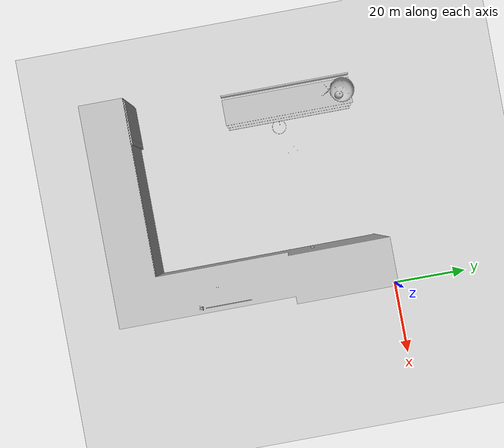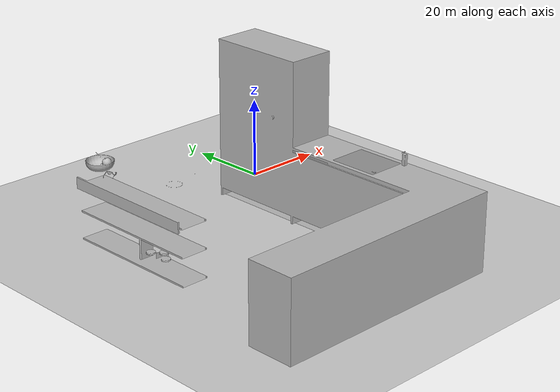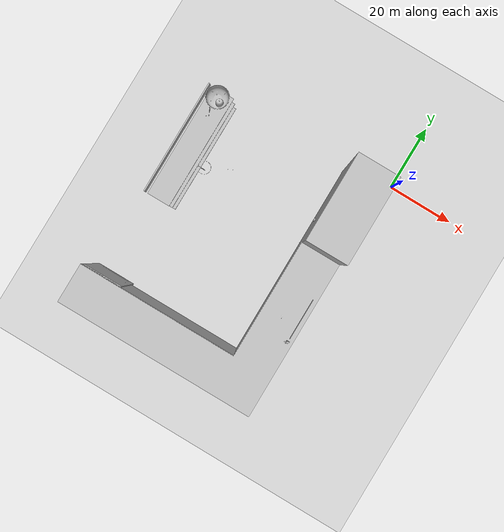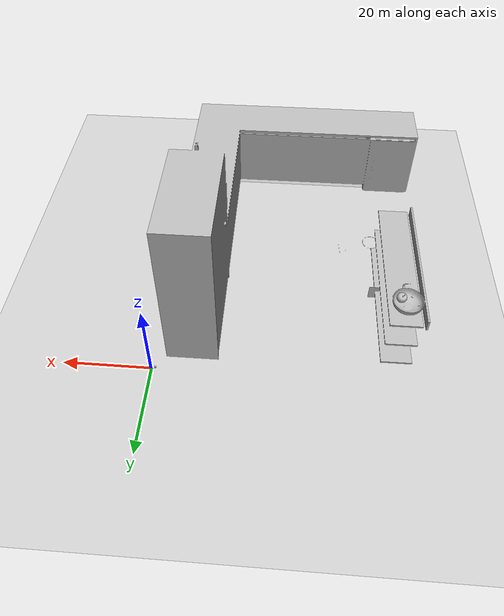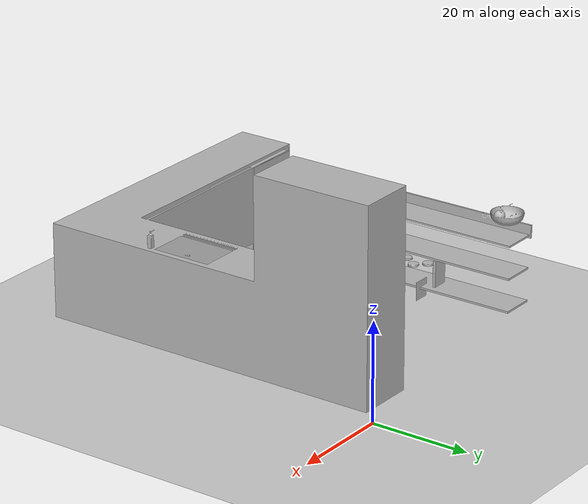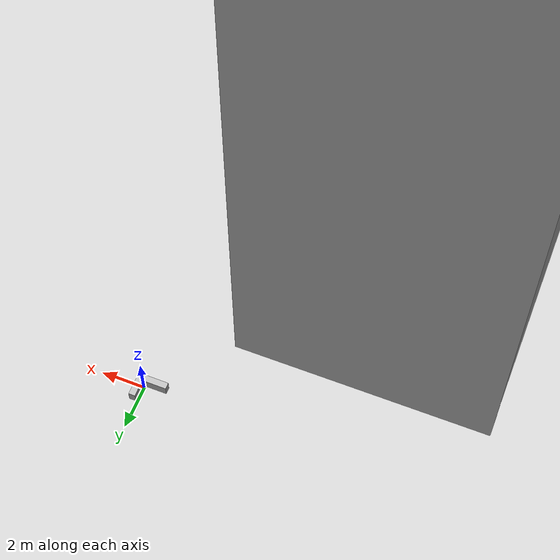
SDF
<sdf version="1.7">
 <world name="default">
  <light name="sun" type="directional">
   <pose>0 0 10 0 -0 0</pose>
   <diffuse>0.8 0.8 0.8 1</diffuse>
   <specular>0.2 0.2 0.2 1</specular>
   <attenuation>
    <range>1000</range>
    <constant>0.9</constant>
    <linear>0.01</linear>
    <quadratic>0.001</quadratic>
   </attenuation>
   <direction>-0.5 0.1 -0.9</direction>
   <spot><inner_angle>0</inner_angle><outer_angle>0</outer_angle><falloff>0</falloff></spot>
  </light>
  <model name="ground_plane">
   <static>1</static>
   <link name="link">
    <collision name="collision">
     <geometry><plane><normal>0 0 1</normal><size>100 100</size></plane></geometry>
     <surface>
      <contact><collide_bitmask>65535</collide_bitmask></contact>
      <friction><ode><mu>100</mu><mu2>50</mu2></ode></friction>
     </surface>
    </collision>
    <visual name="visual">
     <cast_shadows>0</cast_shadows>
     <geometry><plane><normal>0 0 1</normal><size>100 100</size></plane></geometry>
     <material>
      <script><uri>file://media/materials/scripts/gazebo.material</uri><name>Gazebo/Grey</name></script>
     </material>
    </visual>
   </link>
  </model>
  <gravity>0 0 -9.8</gravity>
  <magnetic_field>6e-06 2.3e-05 -4.2e-05</magnetic_field>
  <atmosphere type="adiabatic"/>
  <physics type="ode">
   <max_step_size>0.001</max_step_size>
   <real_time_factor>1</real_time_factor>
   <real_time_update_rate>1000</real_time_update_rate>
  </physics>
  <scene><ambient>0.4 0.4 0.4 1</ambient><background>0.7 0.7 0.7 1</background><shadows>1</shadows></scene>
  <spherical_coordinates>
   <surface_model>EARTH_WGS84</surface_model>
   <latitude_deg>0</latitude_deg>
   <longitude_deg>0</longitude_deg>
   <elevation>0</elevation>
   <heading_deg>0</heading_deg>
  </spherical_coordinates>
  <model name="kitchen">
   <static>1</static>
   <link name="kitchen">
    <visual name="visual">
     <geometry><mesh><uri>model://Kitchen/meshes/model.dae</uri><scale>0.5 0.5 0.5</scale></mesh></geometry>
    </visual>
   </link>
   <pose>0.467305 1.57082 0 0 0 -3.13984</pose>
  </model>
  <model name="spoon_apna">
   <link name="link">
    <inertial>
     <mass>0.05</mass>
     <inertia><ixx>0.145833</ixx><ixy>0</ixy><ixz>0</ixz><iyy>0.145833</iyy><iyz>0</iyz><izz>0.125</izz></inertia>
    </inertial>
    <visual name="visual">
     <geometry><cylinder><radius>0.00663963</radius><length>0.114851</length></cylinder></geometry>
     <material>
      <script><name>Gazebo/Orange</name><uri>file://media/materials/scripts/gazebo.material</uri></script>
      <shader type="pixel"/>
     </material>
    </visual>
    <collision name="collision">
     <geometry><cylinder><radius>0.00664</radius><length>0.114851</length></cylinder></geometry>
     <surface>
      <friction>
       <ode><mu>1</mu><mu2>1</mu2><fdir1>0 0 0</fdir1><slip1>0</slip1><slip2>0</slip2></ode>
       <torsional>
        <coefficient>1</coefficient>
        <patch_radius>0</patch_radius>
        <surface_radius>0</surface_radius>
        <use_patch_radius>1</use_patch_radius>
        <ode><slip>0</slip></ode>
       </torsional>
      </friction>
      <bounce><restitution_coefficient>0</restitution_coefficient><threshold>1e+06</threshold></bounce>
      <contact>
       <collide_without_contact>0</collide_without_contact>
       <collide_without_contact_bitmask>1</collide_without_contact_bitmask>
       <collide_bitmask>1</collide_bitmask>
       <ode>
        <soft_cfm>0</soft_cfm>
        <soft_erp>0.2</soft_erp>
        <kp>1e+13</kp>
        <kd>1</kd>
        <max_vel>0.01</max_vel>
        <min_depth>0</min_depth>
       </ode>
       <bullet>
        <split_impulse>1</split_impulse>
        <split_impulse_penetration_threshold>-0.01</split_impulse_penetration_threshold>
        <soft_cfm>0</soft_cfm>
        <soft_erp>0.2</soft_erp>
        <kp>1e+13</kp>
        <kd>1</kd>
       </bullet>
      </contact>
     </surface>
    </collision>
   </link>
   <static>0</static>
   <pose>0.269187 0.104704 0.539739 -0.000612 -0.000927 -0.026981</pose>
  </model>
  <model name="kitchen_with_coll">
   <link name="link_0">
    <inertial>
     <mass>91.57</mass>
     <inertia><ixx>10.9134</ixx><ixy>0</ixy><ixz>0</ixz><iyy>2.44873</iyy><iyz>0</iyz><izz>9.81194</izz></inertia>
    </inertial>
    <pose>0.235405 0.162265 0.248636 0 -0 0.006368</pose>
    <visual name="visual"><geometry><box><size>0.297114 1.09433 0.482309</size></box></geometry></visual>
    <collision name="collision">
     <geometry><box><size>0.297114 1.09433 0.482309</size></box></geometry>
     <surface>
      <friction>
       <ode><mu>1</mu><mu2>1</mu2><fdir1>0 0 0</fdir1><slip1>0</slip1><slip2>0</slip2></ode>
       <torsional>
        <coefficient>1</coefficient>
        <patch_radius>0</patch_radius>
        <surface_radius>0</surface_radius>
        <use_patch_radius>1</use_patch_radius>
        <ode><slip>0</slip></ode>
       </torsional>
      </friction>
      <contact>
       <collide_without_contact>0</collide_without_contact>
       <collide_without_contact_bitmask>1</collide_without_contact_bitmask>
       <collide_bitmask>1</collide_bitmask>
       <ode>
        <soft_cfm>0</soft_cfm>
        <soft_erp>0.2</soft_erp>
        <kp>1e+13</kp>
        <kd>1</kd>
        <max_vel>0.01</max_vel>
        <min_depth>0</min_depth>
       </ode>
       <bullet>
        <split_impulse>1</split_impulse>
        <split_impulse_penetration_threshold>-0.01</split_impulse_penetration_threshold>
        <soft_cfm>0</soft_cfm>
        <soft_erp>0.2</soft_erp>
        <kp>1e+13</kp>
        <kd>1</kd>
       </bullet>
      </contact>
     </surface>
    </collision>
   </link>
   <link name="link_0_clone">
    <inertial>
     <mass>91.57</mass>
     <inertia><ixx>10.9134</ixx><ixy>0</ixy><ixz>0</ixz><iyy>2.44873</iyy><iyz>0</iyz><izz>9.81194</izz></inertia>
    </inertial>
    <pose>-0.463644 -0.234468 0.248636 0 -0 1.57049</pose>
    <visual name="visual"><geometry><box><size>0.297114 1.09433 0.482309</size></box></geometry></visual>
    <collision name="collision">
     <geometry><box><size>0.297114 1.09433 0.482309</size></box></geometry>
     <surface>
      <friction>
       <ode><mu>1</mu><mu2>1</mu2><fdir1>0 0 0</fdir1><slip1>0</slip1><slip2>0</slip2></ode>
       <torsional>
        <coefficient>1</coefficient>
        <patch_radius>0</patch_radius>
        <surface_radius>0</surface_radius>
        <use_patch_radius>1</use_patch_radius>
        <ode><slip>0</slip></ode>
       </torsional>
      </friction>
      <contact>
       <collide_without_contact>0</collide_without_contact>
       <collide_without_contact_bitmask>1</collide_without_contact_bitmask>
       <collide_bitmask>1</collide_bitmask>
       <ode>
        <soft_cfm>0</soft_cfm>
        <soft_erp>0.2</soft_erp>
        <kp>1e+13</kp>
        <kd>1</kd>
        <max_vel>0.01</max_vel>
        <min_depth>0</min_depth>
       </ode>
       <bullet>
        <split_impulse>1</split_impulse>
        <split_impulse_penetration_threshold>-0.01</split_impulse_penetration_threshold>
        <soft_cfm>0</soft_cfm>
        <soft_erp>0.2</soft_erp>
        <kp>1e+13</kp>
        <kd>1</kd>
       </bullet>
      </contact>
     </surface>
    </collision>
   </link>
   <static>0</static>
   <pose>0 -1e-06 0 0 -0 0</pose>
  </model>
  <model name="wood_cube_2_5cm">
   <link name="link">
    <pose>0 0 0.0125 0 -0 0</pose>
    <inertial>
     <mass>0.0073</mass>
     <inertia>
      <ixx>7.60417e-07</ixx>
      <ixy>0</ixy>
      <ixz>0</ixz>
      <iyy>7.60417e-07</iyy>
      <iyz>0</iyz>
      <izz>7.60417e-07</izz>
     </inertia>
    </inertial>
    <collision name="collision">
     <geometry><box><size>0.025 0.025 0.025</size></box></geometry>
     <surface>
      <contact>
       <poissons_ratio>0.347</poissons_ratio>
       <elastic_modulus>8.8e+09</elastic_modulus>
       <ode><kp>100000</kp><kd>100</kd><max_vel>100</max_vel><min_depth>0.001</min_depth></ode>
      </contact>
      <friction>
       <torsional>
        <coefficient>1</coefficient>
        <use_patch_radius>0</use_patch_radius>
        <surface_radius>0.01</surface_radius>
       </torsional>
      </friction>
     </surface>
    </collision>
    <visual name="visual">
     <geometry><box><size>0.025 0.025 0.025</size></box></geometry>
     <material>
      <script><uri>file://media/materials/scripts/gazebo.material</uri><name>Gazebo/Wood</name></script>
     </material>
    </visual>
   </link>
   <pose>0.164401 0.112159 0.499996 -1e-06 -4.1e-05 -0.018136</pose>
  </model>
 </world>
</sdf>
